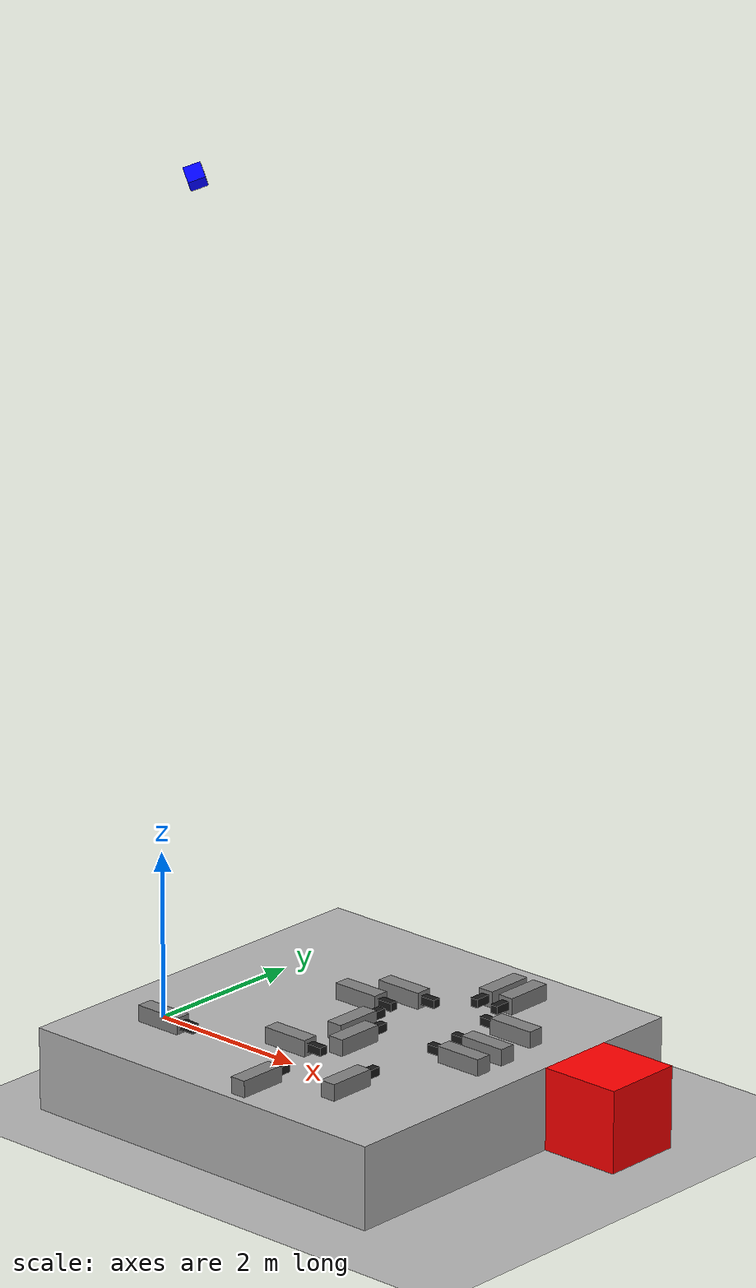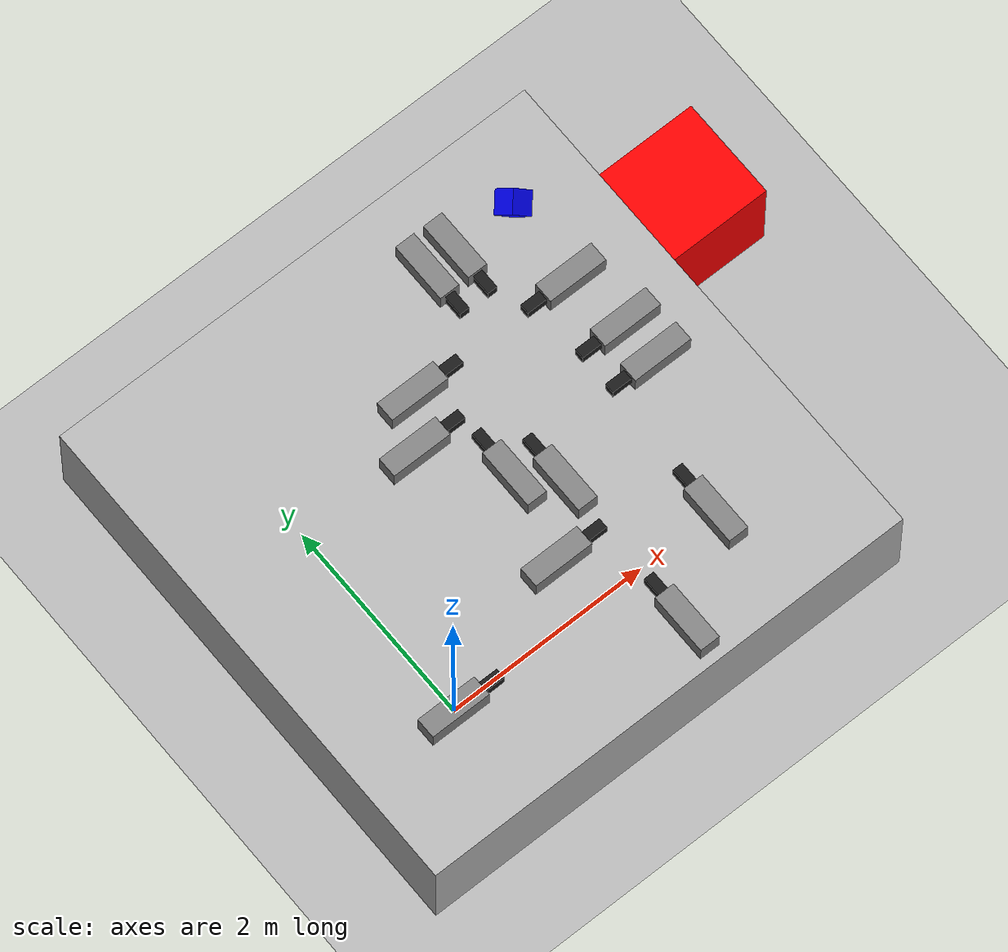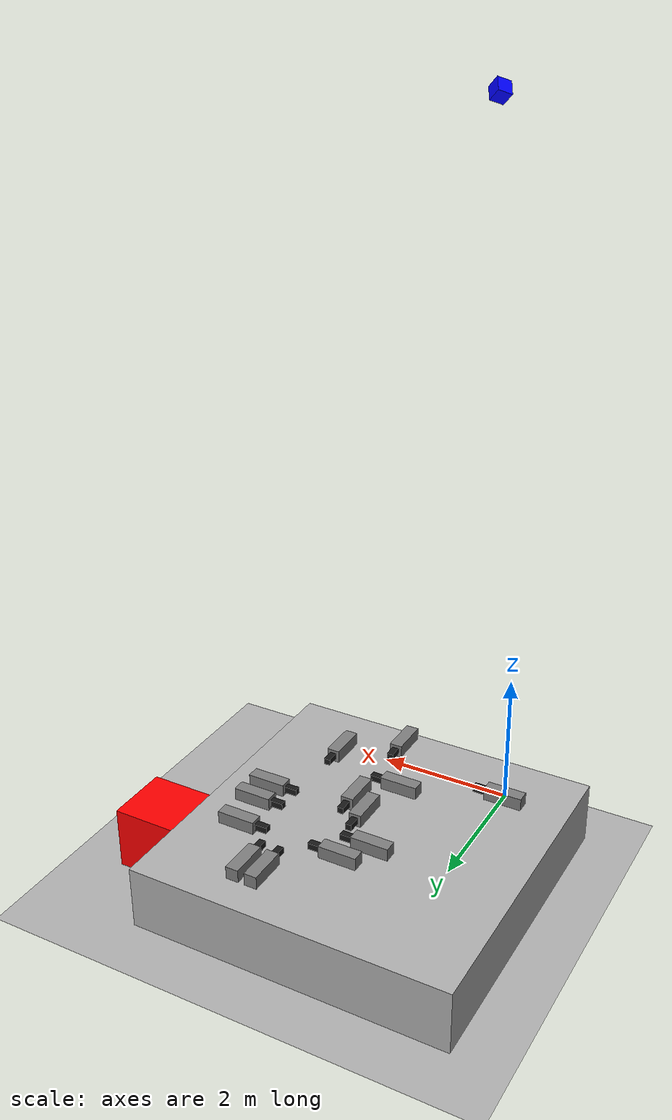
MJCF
<mujoco model="electromechanical system">
    <include file="shared.xml"></include>
	<worldbody>
    	<light diffuse=".5 .5 .5" pos="0 0 3" dir="0 0 -1"/>
		<geom name="table" pos="1.5 1.5 -0.6" rgba="0.7 0.7 0.7 1" size="2.5 2.5 0.5" type="box"/>
		<geom name="goal" pos="4.5 2.5 -0.6" rgba="1 0 0 1" size="0.5 0.5 0.5" type="box"/>
		<geom name="ground" pos="1.5 1.5 -1.1" quat="1 0 0 0" rgba="0.7 0.7 0.7 1" size="5 5 1" type="plane"/>

		<body name="target" pos="0.6 0 10" quat="0.25 0.23 0.5 0">
            <joint name="joint0"  damping="0.1" type="free" limited="false"/>
			<geom name="target0" condim='3' size="0.1 0.1 0.1" type="box" rgba="0 0 1 1"></geom>
		</body>

        <body name='piston00' pos='0 0 0'>
            <geom class="body"/>
            <body>
                <geom class="piston"/>
                <joint class="piston" name="slider00"/>
            </body>
	    </body>

        <body name='piston01' quat="0 1 1 0" pos='2 -0.6 0'>
            <geom class="body"/>
            <body>
                <geom class="piston"/>
                <joint class="piston" name="slider01"/>
            </body>
	    </body>

        <body name='piston02' pos='1.5 0.5 0'>
            <geom class="body"/>
            <body>
                <geom class="piston"/>
                <joint class="piston" name="slider02"/>
            </body>
	    </body>

        <body name='piston03' quat="0 1 1 0" pos='2.8 0 0'>
            <geom class="body"/>
            <body>
                <geom class="piston"/>
                <joint class="piston" name="slider03"/>
            </body>
	    </body>

        <body name='piston04' quat="0 0 1 0" pos='3.3 1.4 0'>
            <geom class="body"/>
            <body>
                <geom class="piston"/>
                <joint class="piston" name="slider04"/>
            </body>
	    </body>

        <body name='piston05' quat="0 0 1 0" pos='3.3 1.8 0'>
            <geom class="body"/>
            <body>
                <geom class="piston"/>
                <joint class="piston" name="slider05"/>
            </body>
	    </body>

        <body name='piston06' quat="0 1 1 0" pos='2 1 0'>
            <geom class="body"/>
            <body>
                <geom class="piston"/>
                <joint class="piston" name="slider06"/>
            </body>
	    </body>

        <body name='piston07' quat="0 1 1 0" pos='1.7 1.3 0'>
            <geom class="body"/>
            <body>
                <geom class="piston"/>
                <joint class="piston" name="slider07"/>
            </body>
	    </body>

        <body name='piston08' pos='1.2 2 0'>
            <geom class="body"/>
            <body>
                <geom class="piston"/>
                <joint class="piston" name="slider08"/>
            </body>
	    </body>

        <body name='piston09' pos='1.5 2.4 0'>
            <geom class="body"/>
            <body>
                <geom class="piston"/>
                <joint class="piston" name="slider09"/>
            </body>
	    </body>

        <body name='piston10' quat="0 1 -1 0"  pos='2.3 3.2 0'>
            <geom class="body"/>
            <body>
                <geom class="piston"/>
                <joint class="piston" name="slider10"/>
            </body>
	    </body>

        <body name='piston11' quat="0 1 -1 0"  pos='2.6 3.2 0'>
            <geom class="body"/>
            <body>
                <geom class="piston"/>
                <joint class="piston" name="slider11"/>
            </body>
	    </body>

        <body name='piston12' quat="0 0 1 0"  pos='3.2 2.4 0'>
            <geom class="body"/>
            <body>
                <geom class="piston"/>
                <joint class="piston" name="slider12"/>
            </body>
	    </body>

	</worldbody>

	<actuator>
		<motor name="slide00" gear="100" joint="slider00"/>
		<motor name="slide01" gear="100" joint="slider01"/>
		<motor name="slide02" gear="100" joint="slider02"/>
		<motor name="slide03" gear="100" joint="slider03"/>
		<motor name="slide04" gear="100" joint="slider04"/>
		<motor name="slide05" gear="100" joint="slider05"/>
		<motor name="slide06" gear="100" joint="slider06"/>
		<motor name="slide07" gear="100" joint="slider07"/>
		<motor name="slide08" gear="100" joint="slider08"/>
		<motor name="slide09" gear="100" joint="slider09"/>
		<motor name="slide10" gear="100" joint="slider10"/>
		<motor name="slide11" gear="100" joint="slider11"/>
		<motor name="slide12" gear="100" joint="slider12"/>
	</actuator>
</mujoco>

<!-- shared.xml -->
<mujoco>
    <compiler inertiafromgeom="true"/>
    <visual>
        <headlight ambient="0.4 0.4 0.4" diffuse="0.6 0.6 0.6" specular="0.5 0.5 0.5"/>
    </visual>
    <asset>
        <texture type="skybox" builtin="gradient" rgb1="0.44 0.85 0.56" rgb2="0.46 0.87 0.58" width="32" height="32"></texture>
        <texture name="texplane" type="2d" builtin="checker" rgb1="1 1 1" rgb2="1 1 1" width="100" height="100" />
        <material name='MatPlane' reflectance='0.0' texture="texplane" texrepeat="1 1" texuniform="true"/>
    </asset>

	<default>
        <joint limited='true' damping='1' armature='0'/>
        <geom contype='3' conaffinity='3' condim='1' friction="0.005 0.005 0.005" margin="0.001" solref=".02 1" solimp='.95 .98 .05'/>
        <default class="body">
            <geom pos="0 0 0" size="0.1 0.1 0.3" quat="0.707 0 0.707 0" rgba="0.5 0.5 0.5 1" type="box"/>
        </default>
        <default class="piston">
            <geom pos="0.2 0 0" rgba="0.1 0.1 0.1 1" quat="0.707 0 0 0" size="0.3 0.05 0.05" type="box"/>
            <joint limited="true" pos="0 0 0" range="-0.1 0.1" type="slide" axis="1 0 0"/>
        </default>
    </default>

	<option gravity="0 0 -9.81" integrator="RK4" timestep="0.001"/>

	<size nstack="3000"/>

</mujoco>
